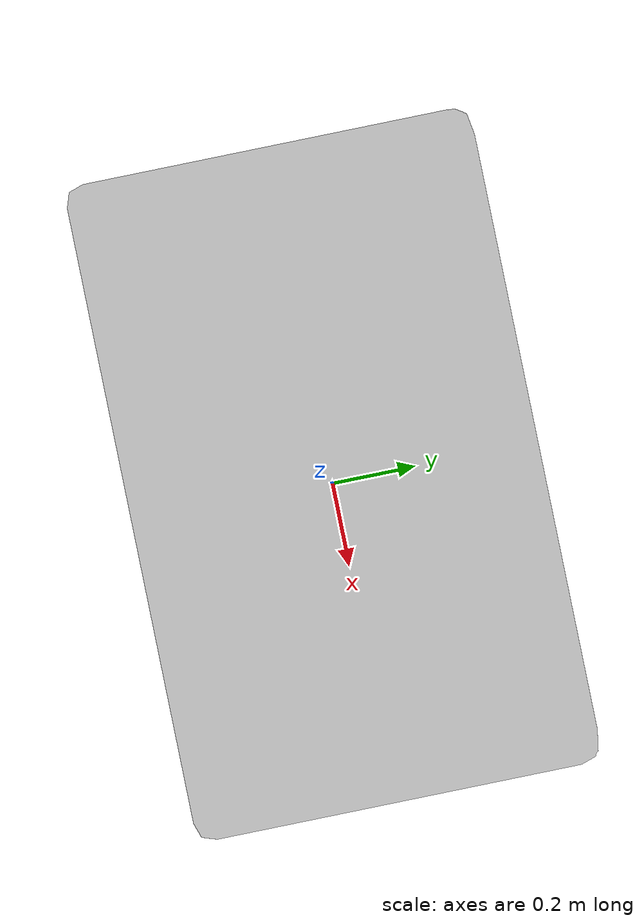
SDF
<?xml version="1.0" ?>
<sdf version="1.6">
  <model name="aws_robomaker_warehouse_TrashCanC_01_classic">
    <link name="link">
      <inertial>
        <mass>1</mass>
        <inertia>
          <ixx>0.200</ixx>
          <ixy>0</ixy>
          <ixz>0</ixz>
          <iyy>0.308</iyy>
          <iyz>0</iyz>
          <izz>0.240</izz>
        </inertia>
      </inertial>
      <collision name="collision">
        <geometry>
          <mesh>
            <uri>model://aws_robomaker_warehouse_TrashCanC_01_classic/meshes/aws_robomaker_warehouse_TrashCanC_01_classic_collision.DAE</uri>
            <scale>1 1 1</scale>
          </mesh>
        </geometry>
		<surface>
          <friction>
            <ode>
              <mu>0.4</mu>
              <mu2>0.4</mu2>
              <fdir1>0 0 0</fdir1>
              <slip1>0</slip1>
              <slip2>0</slip2>
            </ode>
        </friction>
          </surface>
      </collision>
      <visual name="visual">
	    <geometry>
          <mesh>
            <uri>model://aws_robomaker_warehouse_TrashCanC_01_classic/meshes/aws_robomaker_warehouse_TrashCanC_01_classic_visual.DAE</uri>
          </mesh>
        </geometry>
      <meta> <layer> 1 </layer></meta>
</visual>
    </link>
<static>1</static>
  </model>
</sdf>
